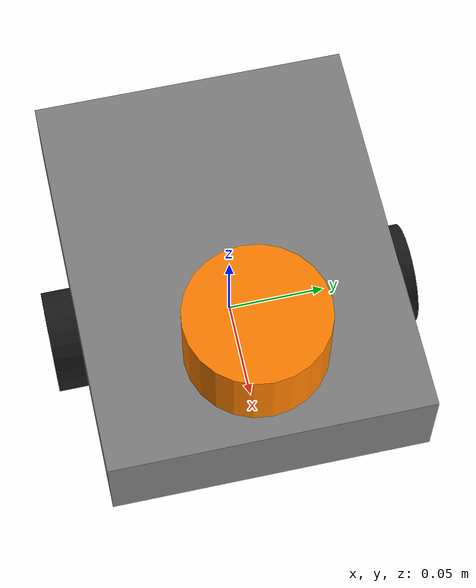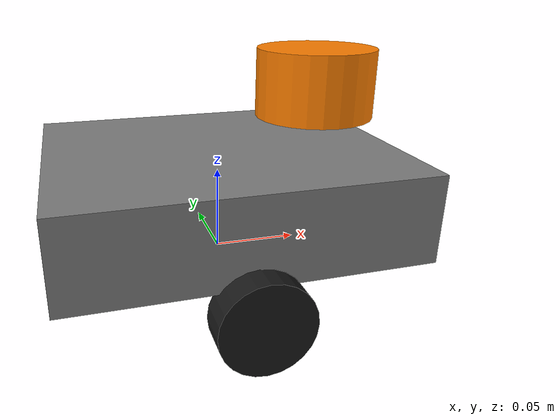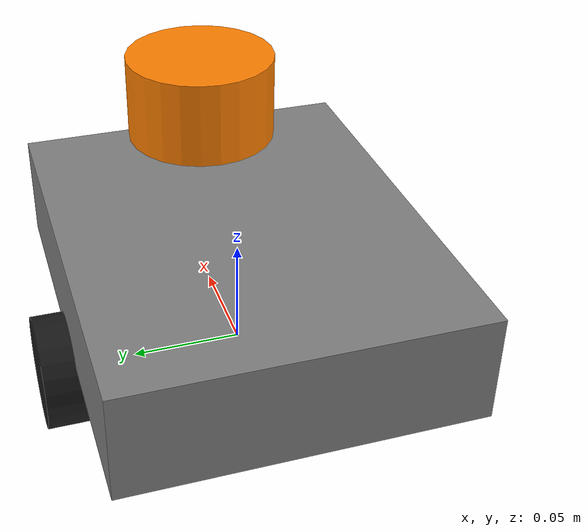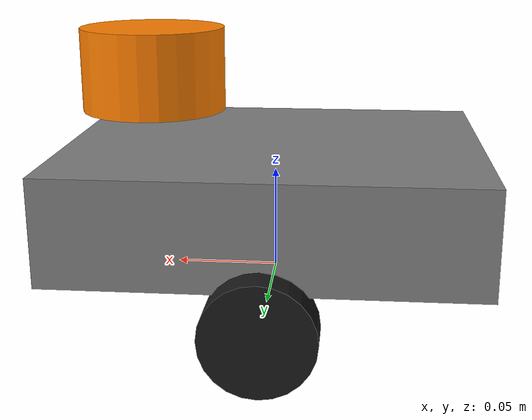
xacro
<?xml version="1.0"?>
<robot name="robot_base" xmlns:xacro="http://www.ros.org/wiki/xacro">

  <!-- Parameter ukuran, sesuaikan dengan fisik robot kamu -->
  <xacro:property name="chassis_length" value="0.20"/>
  <xacro:property name="chassis_width"  value="0.16"/>
  <xacro:property name="chassis_height" value="0.05"/>
  <xacro:property name="chassis_z"      value="0.04"/>

  <xacro:property name="wheel_radius"   value="0.026"/>
  <xacro:property name="wheel_width"    value="0.02"/>
  <xacro:property name="wheel_offset_y" value="0.085"/>

  <xacro:property name="lidar_radius"   value="0.035"/>
  <xacro:property name="lidar_height"   value="0.04"/>
  <xacro:property name="lidar_offset_x" value="0.06"/>
  <xacro:property name="lidar_offset_z" value="0.10"/>

  <material name="grey"><color rgba="0.5 0.5 0.5 1"/></material>
  <material name="black"><color rgba="0.1 0.1 0.1 1"/></material>
  <material name="orange"><color rgba="1.0 0.5 0.0 1"/></material>

  <!-- CHASSIS -->
  <link name="base_link"/>
  <link name="chassis">
    <visual>
      <origin xyz="0 0 0" rpy="0 0 0"/>
      <geometry>
        <box size="${chassis_length} ${chassis_width} ${chassis_height}"/>
      </geometry>
      <material name="grey"/>
    </visual>
  </link>

  <joint name="chassis_joint" type="fixed">
    <parent link="base_link"/>
    <child link="chassis"/>
    <origin xyz="0 0 ${chassis_z}" rpy="0 0 0"/>
  </joint>

  <!-- RODA KIRI -->
  <link name="left_wheel">
    <visual>
      <origin xyz="0 0 0" rpy="${pi/2} 0 0"/>
      <geometry>
        <cylinder radius="${wheel_radius}" length="${wheel_width}"/>
      </geometry>
      <material name="black"/>
    </visual>
  </link>

  <joint name="left_wheel_joint" type="fixed">
    <parent link="base_link"/>
    <child link="left_wheel"/>
    <origin xyz="0 ${wheel_offset_y} 0" rpy="0 0 0"/>
  </joint>

  <!-- RODA KANAN -->
  <link name="right_wheel">
    <visual>
      <origin xyz="0 0 0" rpy="${pi/2} 0 0"/>
      <geometry>
        <cylinder radius="${wheel_radius}" length="${wheel_width}"/>
      </geometry>
      <material name="black"/>
    </visual>
  </link>

  <joint name="right_wheel_joint" type="fixed">
    <parent link="base_link"/>
    <child link="right_wheel"/>
    <origin xyz="0 -${wheel_offset_y} 0" rpy="0 0 0"/>
  </joint>

  <!-- LIDAR (visual saja, condong ke depan; frame asli laser_link tetap dari static_transform_publisher) -->
  <link name="lidar_visual">
    <visual>
      <origin xyz="0 0 0" rpy="0 0 0"/>
      <geometry>
        <cylinder radius="${lidar_radius}" length="${lidar_height}"/>
      </geometry>
      <material name="orange"/>
    </visual>
  </link>

  <joint name="lidar_visual_joint" type="fixed">
    <parent link="base_link"/>
    <child link="lidar_visual"/>
    <origin xyz="${lidar_offset_x} 0 ${lidar_offset_z}" rpy="0 0 0"/>
  </joint>

</robot>
